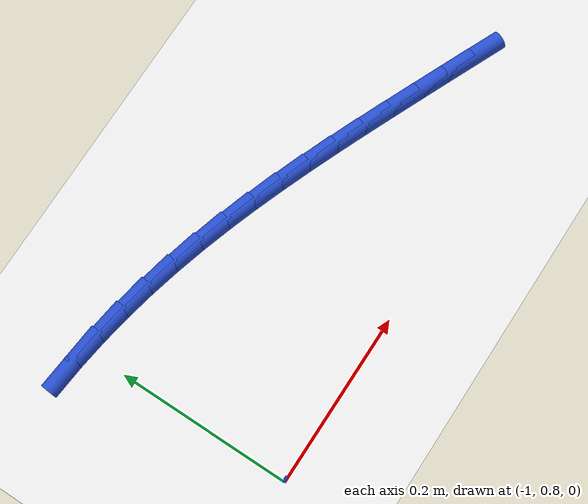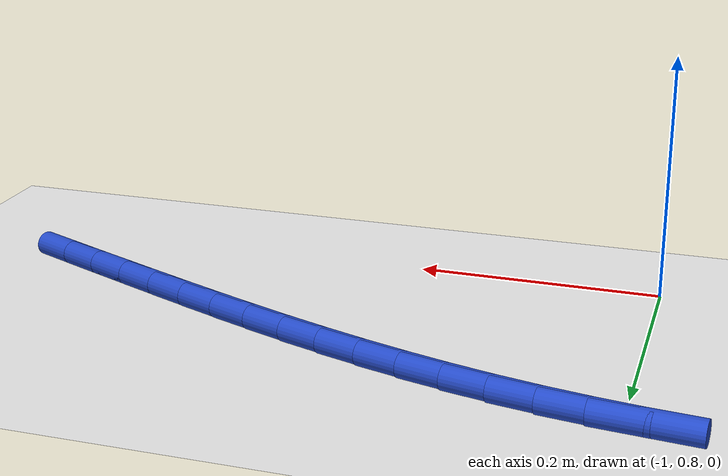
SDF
<sdf version="1.6">
 <world name="default">
  <model name="ground_plane">
   <static>1</static>
   <link name="link">
    <collision name="collision">
     <geometry><plane><normal>0 0 1</normal><size>100 100</size></plane></geometry>
     <surface><friction><ode><mu>100</mu><mu2>50</mu2></ode></friction></surface>
    </collision>
    <visual name="visual">
     <cast_shadows>0</cast_shadows>
     <geometry><plane><normal>0 0 1</normal><size>100 100</size></plane></geometry>
     <material>
      <script><uri>file://media/materials/scripts/gazebo.material</uri><name>Gazebo/WhiteGlow</name></script>
     </material>
    </visual>
   </link>
  </model>
  <model name="line">
   <link name="link_30">
    <pose>-0.5114994749354514 0.8800791641777507 0.01 0 1.57 -0.41796658264414865</pose>
    <collision name="collision">
     <geometry><cylinder><radius>0.01</radius><length>0.08</length></cylinder></geometry>
    </collision>
    <visual name="visual">
     <material>
      <script><name>Gazebo/Blue</name><uri>file://media/materials/scripts/gazebo.material</uri></script>
     </material>
     <geometry><cylinder><radius>0.01</radius><length>0.08</length></cylinder></geometry>
    </visual>
   </link>
   <link name="link_31">
    <pose>-0.5444276328292027 0.8947037385810938 0.01 0 1.57 -0.4133006790574649</pose>
    <collision name="collision">
     <geometry><cylinder><radius>0.01</radius><length>0.08</length></cylinder></geometry>
    </collision>
    <visual name="visual">
     <material>
      <script><name>Gazebo/Blue</name><uri>file://media/materials/scripts/gazebo.material</uri></script>
     </material>
     <geometry><cylinder><radius>0.01</radius><length>0.08</length></cylinder></geometry>
    </visual>
   </link>
   <link name="link_32">
    <pose>-0.5774077480621539 0.9091675324811481 0.01 0 1.57 -0.4114791212161708</pose>
    <collision name="collision">
     <geometry><cylinder><radius>0.01</radius><length>0.08</length></cylinder></geometry>
    </collision>
    <visual name="visual">
     <material>
      <script><name>Gazebo/Blue</name><uri>file://media/materials/scripts/gazebo.material</uri></script>
     </material>
     <geometry><cylinder><radius>0.01</radius><length>0.08</length></cylinder></geometry>
    </visual>
   </link>
   <link name="link_33">
    <pose>-0.6103534007896161 0.9235447145598118 0.01 0 1.57 -0.40660992484934555</pose>
    <collision name="collision">
     <geometry><cylinder><radius>0.01</radius><length>0.08</length></cylinder></geometry>
    </collision>
    <visual name="visual">
     <material>
      <script><name>Gazebo/Blue</name><uri>file://media/materials/scripts/gazebo.material</uri></script>
     </material>
     <geometry><cylinder><radius>0.01</radius><length>0.08</length></cylinder></geometry>
    </visual>
   </link>
   <link name="link_34">
    <pose>-0.6432991547878035 0.9377313751306118 0.01 0 1.57 -0.3984003694788667</pose>
    <collision name="collision">
     <geometry><cylinder><radius>0.01</radius><length>0.08</length></cylinder></geometry>
    </collision>
    <visual name="visual">
     <material>
      <script><name>Gazebo/Blue</name><uri>file://media/materials/scripts/gazebo.material</uri></script>
     </material>
     <geometry><cylinder><radius>0.01</radius><length>0.08</length></cylinder></geometry>
    </visual>
   </link>
   <link name="link_35">
    <pose>-0.6762851088247632 0.9516154574347079 0.01 0 1.57 -0.3868241258016433</pose>
    <collision name="collision">
     <geometry><cylinder><radius>0.01</radius><length>0.08</length></cylinder></geometry>
    </collision>
    <visual name="visual">
     <material>
      <script><name>Gazebo/Blue</name><uri>file://media/materials/scripts/gazebo.material</uri></script>
     </material>
     <geometry><cylinder><radius>0.01</radius><length>0.08</length></cylinder></geometry>
    </visual>
   </link>
   <link name="link_36">
    <pose>-0.7093513616685428 0.9650849047132605 0.01 0 1.57 -0.3718550755544408</pose>
    <collision name="collision">
     <geometry><cylinder><radius>0.01</radius><length>0.08</length></cylinder></geometry>
    </collision>
    <visual name="visual">
     <material>
      <script><name>Gazebo/Blue</name><uri>file://media/materials/scripts/gazebo.material</uri></script>
     </material>
     <geometry><cylinder><radius>0.01</radius><length>0.08</length></cylinder></geometry>
    </visual>
   </link>
   <link name="link_37">
    <pose>-0.7425380120871896 0.97802766020743 0.01 0 1.57 -0.353471273261738</pose>
    <collision name="collision">
     <geometry><cylinder><radius>0.01</radius><length>0.08</length></cylinder></geometry>
    </collision>
    <visual name="visual">
     <material>
      <script><name>Gazebo/Blue</name><uri>file://media/materials/scripts/gazebo.material</uri></script>
     </material>
     <geometry><cylinder><radius>0.01</radius><length>0.08</length></cylinder></geometry>
    </visual>
   </link>
   <link name="link_38">
    <pose>-0.775885158848751 0.9903316671583764 0.01 0 1.57 -0.3316601986304441</pose>
    <collision name="collision">
     <geometry><cylinder><radius>0.01</radius><length>0.08</length></cylinder></geometry>
    </collision>
    <visual name="visual">
     <material>
      <script><name>Gazebo/Blue</name><uri>file://media/materials/scripts/gazebo.material</uri></script>
     </material>
     <geometry><cylinder><radius>0.01</radius><length>0.08</length></cylinder></geometry>
    </visual>
   </link>
   <link name="link_39">
    <pose>-0.8094329007212744 1.0018848688072595 0.01 0 1.57 -0.30642528895157006</pose>
    <collision name="collision">
     <geometry><cylinder><radius>0.01</radius><length>0.08</length></cylinder></geometry>
    </collision>
    <visual name="visual">
     <material>
      <script><name>Gazebo/Blue</name><uri>file://media/materials/scripts/gazebo.material</uri></script>
     </material>
     <geometry><cylinder><radius>0.01</radius><length>0.08</length></cylinder></geometry>
    </visual>
   </link>
   <link name="link_40">
    <pose>-0.8432213364728072 1.01257520839524 0.01 0 1.57 -0.27779363498339904</pose>
    <collision name="collision">
     <geometry><cylinder><radius>0.01</radius><length>0.08</length></cylinder></geometry>
    </collision>
    <visual name="visual">
     <material>
      <script><name>Gazebo/Blue</name><uri>file://media/materials/scripts/gazebo.material</uri></script>
     </material>
     <geometry><cylinder><radius>0.01</radius><length>0.08</length></cylinder></geometry>
    </visual>
   </link>
   <link name="link_41">
    <pose>-0.8772905648713969 1.0222906291634777 0.01 0 1.57 -0.2458245611108107</pose>
    <collision name="collision">
     <geometry><cylinder><radius>0.01</radius><length>0.08</length></cylinder></geometry>
    </collision>
    <visual name="visual">
     <material>
      <script><name>Gazebo/Blue</name><uri>file://media/materials/scripts/gazebo.material</uri></script>
     </material>
     <geometry><cylinder><radius>0.01</radius><length>0.08</length></cylinder></geometry>
    </visual>
   </link>
   <link name="link_42">
    <pose>-0.911680684684798 1.0309190743533172 0.01 0 1.57 -0.2109621488366845</pose>
    <collision name="collision">
     <geometry><cylinder><radius>0.01</radius><length>0.08</length></cylinder></geometry>
    </collision>
    <visual name="visual">
     <material>
      <script><name>Gazebo/Blue</name><uri>file://media/materials/scripts/gazebo.material</uri></script>
     </material>
     <geometry><cylinder><radius>0.01</radius><length>0.08</length></cylinder></geometry>
    </visual>
   </link>
   <link name="link_43">
    <pose>-0.9464169433308423 1.038357792384751 0.01 0 1.57 -0.17461936030097</pose>
    <collision name="collision">
     <geometry><cylinder><radius>0.01</radius><length>0.08</length></cylinder></geometry>
    </collision>
    <visual name="visual">
     <material>
      <script><name>Gazebo/Blue</name><uri>file://media/materials/scripts/gazebo.material</uri></script>
     </material>
     <geometry><cylinder><radius>0.01</radius><length>0.08</length></cylinder></geometry>
    </visual>
   </link>
   <link name="link_44">
    <pose>-0.9814656636978952 1.0445409511010157 0.01 0 1.57 -0.13707113506609558</pose>
    <collision name="collision">
     <geometry><cylinder><radius>0.01</radius><length>0.08</length></cylinder></geometry>
    </collision>
    <visual name="visual">
     <material>
      <script><name>Gazebo/Blue</name><uri>file://media/materials/scripts/gazebo.material</uri></script>
     </material>
     <geometry><cylinder><radius>0.01</radius><length>0.08</length></cylinder></geometry>
    </visual>
   </link>
   <link name="link_45">
    <pose>-1.0167785567879724 1.0494118734870428 0.01 0 1.57 -0.09825086943430407</pose>
    <collision name="collision">
     <geometry><cylinder><radius>0.01</radius><length>0.08</length></cylinder></geometry>
    </collision>
    <visual name="visual">
     <material>
      <script><name>Gazebo/Blue</name><uri>file://media/materials/scripts/gazebo.material</uri></script>
     </material>
     <geometry><cylinder><radius>0.01</radius><length>0.08</length></cylinder></geometry>
    </visual>
   </link>
  </model>
 </world>
</sdf>
